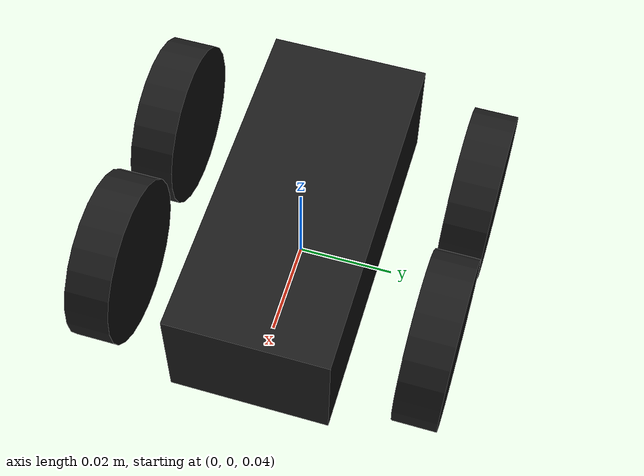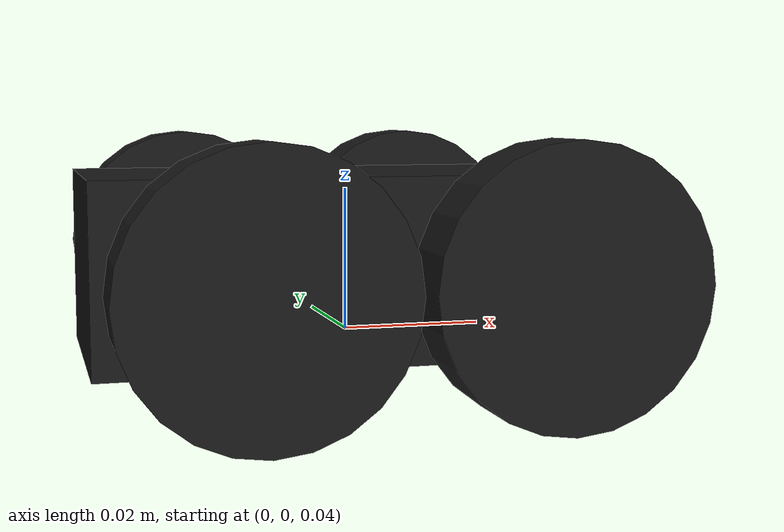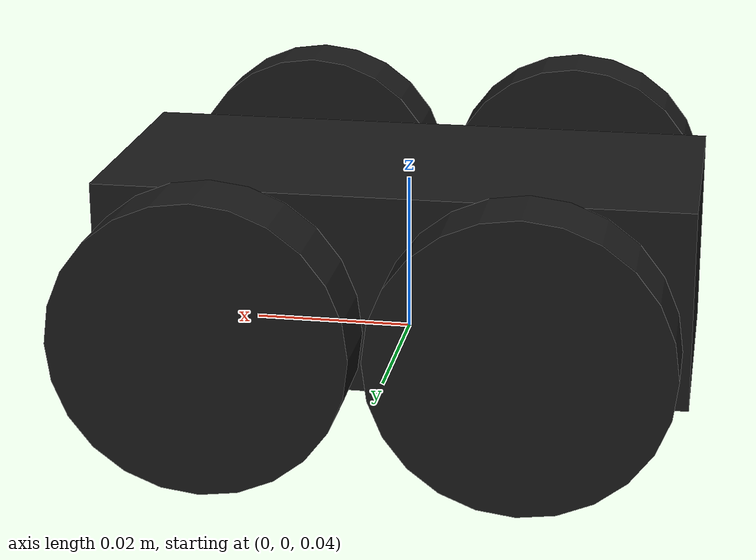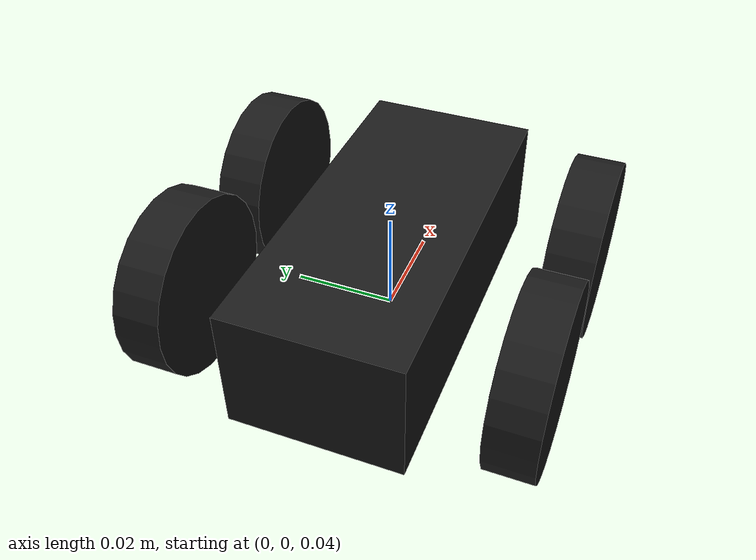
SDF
<?xml version="1.0" ?>
<sdf version="1.5">
<model name="pacmouse">
  <pose>0 0 0.05 0 0 0</pose>
  <static>false</static>
    <link name="chassis">
      <pose>0 0 0 0 0 0</pose>
      <inertial>
        <mass>0.1</mass>
        <inertia>
          <ixx>0.00001456041666666667</ixx>
          <ixy>0.00000000000000000000</ixy>
          <ixz>0.00000000000000000000</ixz>
          <iyy>0.00005031532653333334</iyy>
          <iyz>0.00000000000000000000</iyz>
          <izz>0.00005445907653333334</izz>
        </inertia>
      </inertial>
      <collision name="chassis_collision">
        <geometry>
          <box>
            <size>0.073572 0.0335 0.025</size>
          </box>
        </geometry>
      </collision>
      <visual name="chassis_visual">
        <geometry>
          <box>
            <size>0.073572 0.0335 0.025</size>
          </box>
        </geometry>
        <material>
          <ambient>0.1 1.0 0.1 1</ambient>
          <diffuse>0.1 0.1 0.1 1</diffuse>
        </material>
      </visual>
    </link>
    <link name="right_front_wheel">
      <pose>0.018382 -0.033498 0.0 1.5707963267948966 0 0</pose>
      <visual name="right_front_wheel_visual">
        <geometry>
          <cylinder>
            <radius>0.01763</radius>
            <length>0.009144</length>
          </cylinder>
        </geometry>
        <material>
          <ambient>0.0 0.0 0.0 1</ambient>
          <diffuse>0.1 0.1 0.1 1</diffuse>
        </material>
      </visual>
      <collision name="right_front_wheel_collision">
        <geometry>
          <cylinder>
            <radius>0.01763</radius>
            <length>0.009144</length>
          </cylinder>
        </geometry>
        <surface>
          <friction>
            <ode>
              <mu>0.8</mu>
              <mu2>0.8</mu2>
            </ode>
          </friction>
        </surface>
      </collision>
      <inertial>
        <mass>0.03</mass>
        <inertia>
          <ixx>0.00001457461780000000</ixx>
          <ixy>0.00000000000000000000</ixy>
          <ixz>0.00000000000000000000</ixz>
          <iyy>0.00001457461780000000</iyy>
          <iyz>0.00000000000000000000</iyz>
          <izz>0.00002775569000000000</izz>
        </inertia>
      </inertial>
    </link>
    <link name="right_rear_wheel">
      <pose>-0.018382 -0.033498 0.0 1.5707963267948966 0 0</pose>
      <visual name="right_rear_wheel_visual">
        <geometry>
          <cylinder>
            <radius>0.01763</radius>
            <length>0.009144</length>
          </cylinder>
        </geometry>
        <material>
          <ambient>0.0 0.0 0.0 1</ambient>
          <diffuse>0.1 0.1 0.1 1</diffuse>
        </material>
      </visual>
      <collision name="right_rear_wheel_collision">
        <geometry>
          <cylinder>
            <radius>0.01763</radius>
            <length>0.009144</length>
          </cylinder>
        </geometry>
        <surface>
          <friction>
            <ode>
              <mu>0.8</mu>
              <mu2>0.8</mu2>
            </ode>
          </friction>
        </surface>
      </collision>
      <inertial>
        <mass>0.03</mass>
        <inertia>
          <ixx>0.00001457461780000000</ixx>
          <ixy>0.00000000000000000000</ixy>
          <ixz>0.00000000000000000000</ixz>
          <iyy>0.00001457461780000000</iyy>
          <iyz>0.00000000000000000000</iyz>
          <izz>0.00002775569000000000</izz>
        </inertia>
      </inertial>
    </link>
    <link name="left_front_wheel">
      <pose>0.018382 0.033498 0.0 -1.5707963267948966 0 0</pose>
      <visual name="left_front_wheel_visual">
        <geometry>
          <cylinder>
            <radius>0.01763</radius>
            <length>0.009144</length>
          </cylinder>
        </geometry>
        <material>
          <ambient>0.0 0.0 0.0 1</ambient>
          <diffuse>0.1 0.1 0.1 1</diffuse>
        </material>
      </visual>
      <collision name="left_front_wheel_collision">
        <geometry>
          <cylinder>
            <radius>0.01763</radius>
            <length>0.009144</length>
          </cylinder>
        </geometry>
        <surface>
          <friction>
            <ode>
              <mu>0.8</mu>
              <mu2>0.8</mu2>
            </ode>
          </friction>
        </surface>
      </collision>
      <inertial>
        <mass>0.03</mass>
        <inertia>
          <ixx>0.00001457461780000000</ixx>
          <ixy>0.00000000000000000000</ixy>
          <ixz>0.00000000000000000000</ixz>
          <iyy>0.00001457461780000000</iyy>
          <iyz>0.00000000000000000000</iyz>
          <izz>0.00002775569000000000</izz>
        </inertia>
      </inertial>
    </link>
    <link name="left_rear_wheel">
      <pose>-0.018382 0.033498 0.0 -1.5707963267948966 0 0</pose>
      <visual name="left_rear_wheel_visual">
        <geometry>
          <cylinder>
            <radius>0.01763</radius>
            <length>0.009144</length>
          </cylinder>
        </geometry>
        <material>
          <ambient>0.0 0.0 0.0 1</ambient>
          <diffuse>0.1 0.1 0.1 1</diffuse>
        </material>
      </visual>
      <collision name="left_rear_wheel_collision">
        <geometry>
          <cylinder>
            <radius>0.01763</radius>
            <length>0.009144</length>
          </cylinder>
        </geometry>
        <surface>
          <friction>
            <ode>
              <mu>0.8</mu>
              <mu2>0.8</mu2>
            </ode>
          </friction>
        </surface>
      </collision>
      <inertial>
        <mass>0.03</mass>
        <inertia>
          <ixx>0.00001457461780000000</ixx>
          <ixy>0.00000000000000000000</ixy>
          <ixz>0.00000000000000000000</ixz>
          <iyy>0.00001457461780000000</iyy>
          <iyz>0.00000000000000000000</iyz>
          <izz>0.00002775569000000000</izz>
        </inertia>
      </inertial>
    </link>
    <joint name="right_front_wheel_joint" type="revolute">
      <pose>0 0 0 0 0 0</pose>
      <parent>chassis</parent>
      <child>right_front_wheel</child>
      <axis><xyz>0 0 1</xyz></axis>
    </joint>
    <joint name="right_rear_wheel_joint" type="revolute">
      <pose>0 0 0 0 0 0</pose>
      <parent>chassis</parent>
      <child>right_rear_wheel</child>
      <axis><xyz>0 0 1</xyz></axis>
    </joint>
    <joint name="left_front_wheel_joint" type="revolute">
      <pose>0 0 0 0 0 0</pose>
      <parent>chassis</parent>
      <child>left_front_wheel</child>
      <axis><xyz>0 0 1</xyz></axis>
    </joint>
    <joint name="left_rear_wheel_joint" type="revolute">
      <pose>0 0 0 0 0 0</pose>
      <parent>chassis</parent>
      <child>left_rear_wheel</child>
      <axis><xyz>0 0 1</xyz></axis>
    </joint>
</model>
</sdf>
